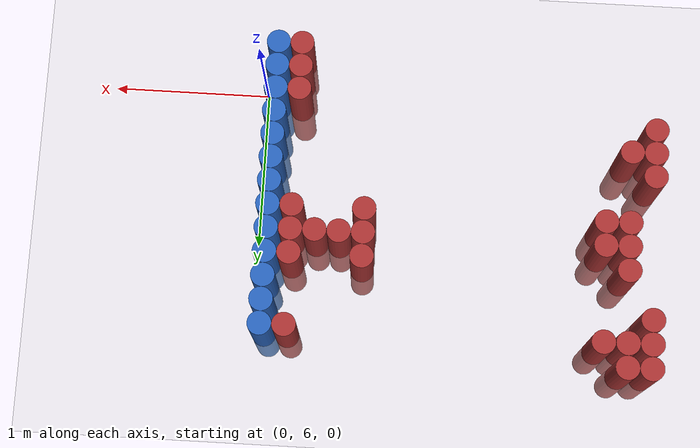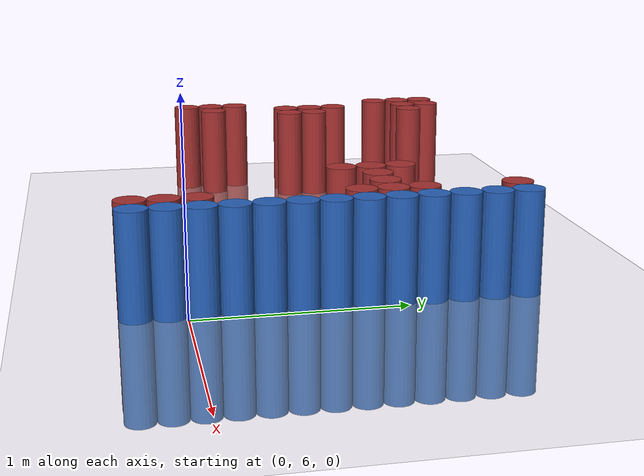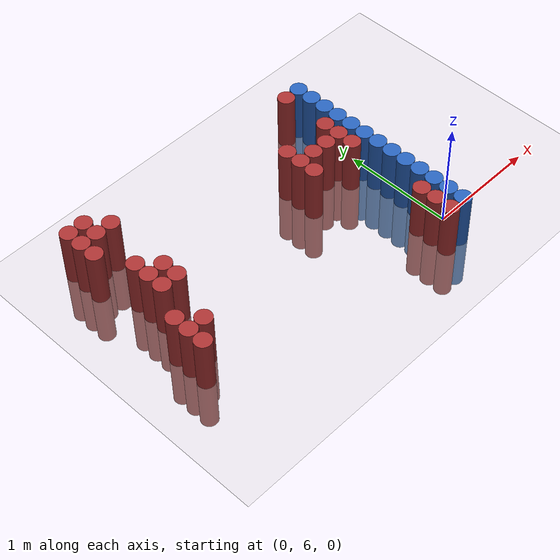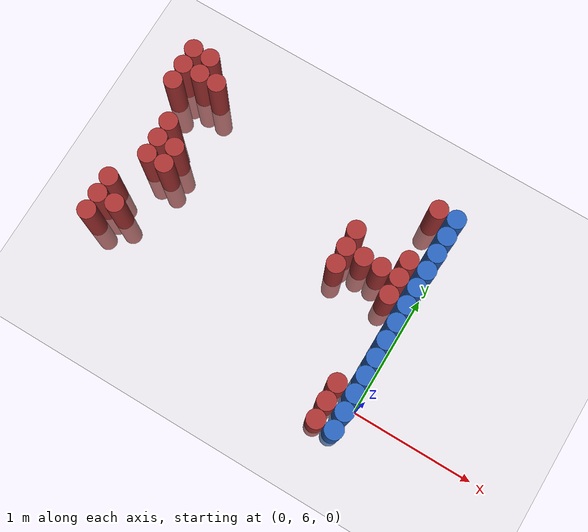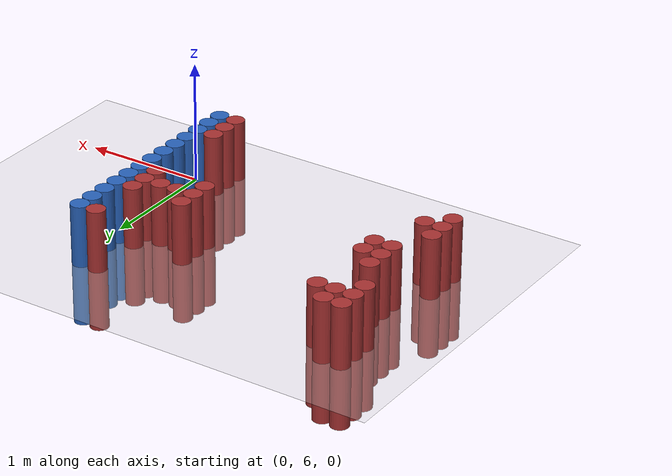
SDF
<sdf version="1.6">
 <world name="default">
  <model name="ground_plane">
   <static>1</static>
   <link name="link">
    <collision name="collision">
     <geometry><plane><normal>0 0 1</normal><size>100 100</size></plane></geometry>
     <surface><friction><ode><mu>100</mu><mu2>50</mu2></ode></friction></surface>
    </collision>
    <visual name="visual">
     <cast_shadows>0</cast_shadows>
     <geometry><plane><normal>0 0 1</normal><size>100 100</size></plane></geometry>
     <material>
      <script><uri>file://media/materials/scripts/gazebo.material</uri><name>Gazebo/Grey</name></script>
     </material>
    </visual>
   </link>
  </model>
  <model name="unit_cylinder_193">
   <static>1</static>
   <pose>-2.475000 6.225000 0.000000 0.000000 0.000000 0.000000</pose>
   <link name="link">
    <inertial>
     <mass>1</mass>
     <inertia><ixx>0.145833</ixx><ixy>0</ixy><ixz>0</ixz><iyy>0.145833</iyy><iyz>0</iyz><izz>0.125</izz></inertia>
    </inertial>
    <collision name="collision">
     <geometry><cylinder><radius>0.075000</radius><length>1</length></cylinder></geometry>
    </collision>
    <visual name="visual">
     <geometry><cylinder><radius>0.075000</radius><length>1</length></cylinder></geometry>
     <material>
      <ambient>0.648000 0.192000 0.192000 1</ambient>
      <diffuse>0.648000 0.192000 0.192000 1</diffuse>
     </material>
     <material>
      <script><name>Gazebo/Grey</name><uri>file://media/materials/scripts/gazebo.material</uri></script>
     </material>
    </visual>
    <sensor name="sensor_contact" type="contact"><contact><collision>collision</collision></contact></sensor>
   </link>
   <plugin filename="gz-sim-touchplugin-system" name="gz::sim::systems::TouchPlugin">
    <target>robot</target>
    <namespace>robot</namespace>
    <time>0.001</time>
    <enabled>true</enabled>
   </plugin>
  </model>
  <model name="unit_cylinder_194">
   <static>1</static>
   <pose>-2.475000 6.375000 0.000000 0.000000 0.000000 0.000000</pose>
   <link name="link">
    <inertial>
     <mass>1</mass>
     <inertia><ixx>0.145833</ixx><ixy>0</ixy><ixz>0</ixz><iyy>0.145833</iyy><iyz>0</iyz><izz>0.125</izz></inertia>
    </inertial>
    <collision name="collision">
     <geometry><cylinder><radius>0.075000</radius><length>1</length></cylinder></geometry>
    </collision>
    <visual name="visual">
     <geometry><cylinder><radius>0.075000</radius><length>1</length></cylinder></geometry>
     <material>
      <ambient>0.648000 0.192000 0.192000 1</ambient>
      <diffuse>0.648000 0.192000 0.192000 1</diffuse>
     </material>
     <material>
      <script><name>Gazebo/Grey</name><uri>file://media/materials/scripts/gazebo.material</uri></script>
     </material>
    </visual>
    <sensor name="sensor_contact" type="contact"><contact><collision>collision</collision></contact></sensor>
   </link>
   <plugin filename="gz-sim-touchplugin-system" name="gz::sim::systems::TouchPlugin">
    <target>robot</target>
    <namespace>robot</namespace>
    <time>0.001</time>
    <enabled>true</enabled>
   </plugin>
  </model>
  <model name="unit_cylinder_195">
   <static>1</static>
   <pose>-2.475000 6.525000 0.000000 0.000000 0.000000 0.000000</pose>
   <link name="link">
    <inertial>
     <mass>1</mass>
     <inertia><ixx>0.145833</ixx><ixy>0</ixy><ixz>0</ixz><iyy>0.145833</iyy><iyz>0</iyz><izz>0.125</izz></inertia>
    </inertial>
    <collision name="collision">
     <geometry><cylinder><radius>0.075000</radius><length>1</length></cylinder></geometry>
    </collision>
    <visual name="visual">
     <geometry><cylinder><radius>0.075000</radius><length>1</length></cylinder></geometry>
     <material>
      <ambient>0.648000 0.192000 0.192000 1</ambient>
      <diffuse>0.648000 0.192000 0.192000 1</diffuse>
     </material>
     <material>
      <script><name>Gazebo/Grey</name><uri>file://media/materials/scripts/gazebo.material</uri></script>
     </material>
    </visual>
    <sensor name="sensor_contact" type="contact"><contact><collision>collision</collision></contact></sensor>
   </link>
   <plugin filename="gz-sim-touchplugin-system" name="gz::sim::systems::TouchPlugin">
    <target>robot</target>
    <namespace>robot</namespace>
    <time>0.001</time>
    <enabled>true</enabled>
   </plugin>
  </model>
  <model name="unit_cylinder_196">
   <static>1</static>
   <pose>-2.475000 7.425000 0.000000 0.000000 0.000000 0.000000</pose>
   <link name="link">
    <inertial>
     <mass>1</mass>
     <inertia><ixx>0.145833</ixx><ixy>0</ixy><ixz>0</ixz><iyy>0.145833</iyy><iyz>0</iyz><izz>0.125</izz></inertia>
    </inertial>
    <collision name="collision">
     <geometry><cylinder><radius>0.075000</radius><length>1</length></cylinder></geometry>
    </collision>
    <visual name="visual">
     <geometry><cylinder><radius>0.075000</radius><length>1</length></cylinder></geometry>
     <material>
      <ambient>0.648000 0.192000 0.192000 1</ambient>
      <diffuse>0.648000 0.192000 0.192000 1</diffuse>
     </material>
     <material>
      <script><name>Gazebo/Grey</name><uri>file://media/materials/scripts/gazebo.material</uri></script>
     </material>
    </visual>
    <sensor name="sensor_contact" type="contact"><contact><collision>collision</collision></contact></sensor>
   </link>
   <plugin filename="gz-sim-touchplugin-system" name="gz::sim::systems::TouchPlugin">
    <target>robot</target>
    <namespace>robot</namespace>
    <time>0.001</time>
    <enabled>true</enabled>
   </plugin>
  </model>
  <model name="unit_cylinder_197">
   <static>1</static>
   <pose>-2.475000 7.575000 0.000000 0.000000 0.000000 0.000000</pose>
   <link name="link">
    <inertial>
     <mass>1</mass>
     <inertia><ixx>0.145833</ixx><ixy>0</ixy><ixz>0</ixz><iyy>0.145833</iyy><iyz>0</iyz><izz>0.125</izz></inertia>
    </inertial>
    <collision name="collision">
     <geometry><cylinder><radius>0.075000</radius><length>1</length></cylinder></geometry>
    </collision>
    <visual name="visual">
     <geometry><cylinder><radius>0.075000</radius><length>1</length></cylinder></geometry>
     <material>
      <ambient>0.648000 0.192000 0.192000 1</ambient>
      <diffuse>0.648000 0.192000 0.192000 1</diffuse>
     </material>
     <material>
      <script><name>Gazebo/Grey</name><uri>file://media/materials/scripts/gazebo.material</uri></script>
     </material>
    </visual>
    <sensor name="sensor_contact" type="contact"><contact><collision>collision</collision></contact></sensor>
   </link>
   <plugin filename="gz-sim-touchplugin-system" name="gz::sim::systems::TouchPlugin">
    <target>robot</target>
    <namespace>robot</namespace>
    <time>0.001</time>
    <enabled>true</enabled>
   </plugin>
  </model>
  <model name="unit_cylinder_198">
   <static>1</static>
   <pose>-2.475000 7.725000 0.000000 0.000000 0.000000 0.000000</pose>
   <link name="link">
    <inertial>
     <mass>1</mass>
     <inertia><ixx>0.145833</ixx><ixy>0</ixy><ixz>0</ixz><iyy>0.145833</iyy><iyz>0</iyz><izz>0.125</izz></inertia>
    </inertial>
    <collision name="collision">
     <geometry><cylinder><radius>0.075000</radius><length>1</length></cylinder></geometry>
    </collision>
    <visual name="visual">
     <geometry><cylinder><radius>0.075000</radius><length>1</length></cylinder></geometry>
     <material>
      <ambient>0.648000 0.192000 0.192000 1</ambient>
      <diffuse>0.648000 0.192000 0.192000 1</diffuse>
     </material>
     <material>
      <script><name>Gazebo/Grey</name><uri>file://media/materials/scripts/gazebo.material</uri></script>
     </material>
    </visual>
    <sensor name="sensor_contact" type="contact"><contact><collision>collision</collision></contact></sensor>
   </link>
   <plugin filename="gz-sim-touchplugin-system" name="gz::sim::systems::TouchPlugin">
    <target>robot</target>
    <namespace>robot</namespace>
    <time>0.001</time>
    <enabled>true</enabled>
   </plugin>
  </model>
  <model name="unit_cylinder_200">
   <static>1</static>
   <pose>-2.325000 6.375000 0.000000 0.000000 0.000000 0.000000</pose>
   <link name="link">
    <inertial>
     <mass>1</mass>
     <inertia><ixx>0.145833</ixx><ixy>0</ixy><ixz>0</ixz><iyy>0.145833</iyy><iyz>0</iyz><izz>0.125</izz></inertia>
    </inertial>
    <collision name="collision">
     <geometry><cylinder><radius>0.075000</radius><length>1</length></cylinder></geometry>
    </collision>
    <visual name="visual">
     <geometry><cylinder><radius>0.075000</radius><length>1</length></cylinder></geometry>
     <material>
      <ambient>0.648000 0.192000 0.192000 1</ambient>
      <diffuse>0.648000 0.192000 0.192000 1</diffuse>
     </material>
     <material>
      <script><name>Gazebo/Grey</name><uri>file://media/materials/scripts/gazebo.material</uri></script>
     </material>
    </visual>
    <sensor name="sensor_contact" type="contact"><contact><collision>collision</collision></contact></sensor>
   </link>
   <plugin filename="gz-sim-touchplugin-system" name="gz::sim::systems::TouchPlugin">
    <target>robot</target>
    <namespace>robot</namespace>
    <time>0.001</time>
    <enabled>true</enabled>
   </plugin>
  </model>
  <model name="unit_cylinder_201">
   <static>1</static>
   <pose>-2.325000 6.825000 0.000000 0.000000 0.000000 0.000000</pose>
   <link name="link">
    <inertial>
     <mass>1</mass>
     <inertia><ixx>0.145833</ixx><ixy>0</ixy><ixz>0</ixz><iyy>0.145833</iyy><iyz>0</iyz><izz>0.125</izz></inertia>
    </inertial>
    <collision name="collision">
     <geometry><cylinder><radius>0.075000</radius><length>1</length></cylinder></geometry>
    </collision>
    <visual name="visual">
     <geometry><cylinder><radius>0.075000</radius><length>1</length></cylinder></geometry>
     <material>
      <ambient>0.648000 0.192000 0.192000 1</ambient>
      <diffuse>0.648000 0.192000 0.192000 1</diffuse>
     </material>
     <material>
      <script><name>Gazebo/Grey</name><uri>file://media/materials/scripts/gazebo.material</uri></script>
     </material>
    </visual>
    <sensor name="sensor_contact" type="contact"><contact><collision>collision</collision></contact></sensor>
   </link>
   <plugin filename="gz-sim-touchplugin-system" name="gz::sim::systems::TouchPlugin">
    <target>robot</target>
    <namespace>robot</namespace>
    <time>0.001</time>
    <enabled>true</enabled>
   </plugin>
  </model>
  <model name="unit_cylinder_202">
   <static>1</static>
   <pose>-2.325000 6.975000 0.000000 0.000000 0.000000 0.000000</pose>
   <link name="link">
    <inertial>
     <mass>1</mass>
     <inertia><ixx>0.145833</ixx><ixy>0</ixy><ixz>0</ixz><iyy>0.145833</iyy><iyz>0</iyz><izz>0.125</izz></inertia>
    </inertial>
    <collision name="collision">
     <geometry><cylinder><radius>0.075000</radius><length>1</length></cylinder></geometry>
    </collision>
    <visual name="visual">
     <geometry><cylinder><radius>0.075000</radius><length>1</length></cylinder></geometry>
     <material>
      <ambient>0.648000 0.192000 0.192000 1</ambient>
      <diffuse>0.648000 0.192000 0.192000 1</diffuse>
     </material>
     <material>
      <script><name>Gazebo/Grey</name><uri>file://media/materials/scripts/gazebo.material</uri></script>
     </material>
    </visual>
    <sensor name="sensor_contact" type="contact"><contact><collision>collision</collision></contact></sensor>
   </link>
   <plugin filename="gz-sim-touchplugin-system" name="gz::sim::systems::TouchPlugin">
    <target>robot</target>
    <namespace>robot</namespace>
    <time>0.001</time>
    <enabled>true</enabled>
   </plugin>
  </model>
  <model name="unit_cylinder_203">
   <static>1</static>
   <pose>-2.325000 7.125000 0.000000 0.000000 0.000000 0.000000</pose>
   <link name="link">
    <inertial>
     <mass>1</mass>
     <inertia><ixx>0.145833</ixx><ixy>0</ixy><ixz>0</ixz><iyy>0.145833</iyy><iyz>0</iyz><izz>0.125</izz></inertia>
    </inertial>
    <collision name="collision">
     <geometry><cylinder><radius>0.075000</radius><length>1</length></cylinder></geometry>
    </collision>
    <visual name="visual">
     <geometry><cylinder><radius>0.075000</radius><length>1</length></cylinder></geometry>
     <material>
      <ambient>0.648000 0.192000 0.192000 1</ambient>
      <diffuse>0.648000 0.192000 0.192000 1</diffuse>
     </material>
     <material>
      <script><name>Gazebo/Grey</name><uri>file://media/materials/scripts/gazebo.material</uri></script>
     </material>
    </visual>
    <sensor name="sensor_contact" type="contact"><contact><collision>collision</collision></contact></sensor>
   </link>
   <plugin filename="gz-sim-touchplugin-system" name="gz::sim::systems::TouchPlugin">
    <target>robot</target>
    <namespace>robot</namespace>
    <time>0.001</time>
    <enabled>true</enabled>
   </plugin>
  </model>
  <model name="unit_cylinder_204">
   <static>1</static>
   <pose>-2.325000 7.575000 0.000000 0.000000 0.000000 0.000000</pose>
   <link name="link">
    <inertial>
     <mass>1</mass>
     <inertia><ixx>0.145833</ixx><ixy>0</ixy><ixz>0</ixz><iyy>0.145833</iyy><iyz>0</iyz><izz>0.125</izz></inertia>
    </inertial>
    <collision name="collision">
     <geometry><cylinder><radius>0.075000</radius><length>1</length></cylinder></geometry>
    </collision>
    <visual name="visual">
     <geometry><cylinder><radius>0.075000</radius><length>1</length></cylinder></geometry>
     <material>
      <ambient>0.648000 0.192000 0.192000 1</ambient>
      <diffuse>0.648000 0.192000 0.192000 1</diffuse>
     </material>
     <material>
      <script><name>Gazebo/Grey</name><uri>file://media/materials/scripts/gazebo.material</uri></script>
     </material>
    </visual>
    <sensor name="sensor_contact" type="contact"><contact><collision>collision</collision></contact></sensor>
   </link>
   <plugin filename="gz-sim-touchplugin-system" name="gz::sim::systems::TouchPlugin">
    <target>robot</target>
    <namespace>robot</namespace>
    <time>0.001</time>
    <enabled>true</enabled>
   </plugin>
  </model>
  <model name="unit_cylinder_205">
   <static>1</static>
   <pose>-2.325000 7.725000 0.000000 0.000000 0.000000 0.000000</pose>
   <link name="link">
    <inertial>
     <mass>1</mass>
     <inertia><ixx>0.145833</ixx><ixy>0</ixy><ixz>0</ixz><iyy>0.145833</iyy><iyz>0</iyz><izz>0.125</izz></inertia>
    </inertial>
    <collision name="collision">
     <geometry><cylinder><radius>0.075000</radius><length>1</length></cylinder></geometry>
    </collision>
    <visual name="visual">
     <geometry><cylinder><radius>0.075000</radius><length>1</length></cylinder></geometry>
     <material>
      <ambient>0.648000 0.192000 0.192000 1</ambient>
      <diffuse>0.648000 0.192000 0.192000 1</diffuse>
     </material>
     <material>
      <script><name>Gazebo/Grey</name><uri>file://media/materials/scripts/gazebo.material</uri></script>
     </material>
    </visual>
    <sensor name="sensor_contact" type="contact"><contact><collision>collision</collision></contact></sensor>
   </link>
   <plugin filename="gz-sim-touchplugin-system" name="gz::sim::systems::TouchPlugin">
    <target>robot</target>
    <namespace>robot</namespace>
    <time>0.001</time>
    <enabled>true</enabled>
   </plugin>
  </model>
  <model name="unit_cylinder_210">
   <static>1</static>
   <pose>-2.175000 6.825000 0.000000 0.000000 0.000000 0.000000</pose>
   <link name="link">
    <inertial>
     <mass>1</mass>
     <inertia><ixx>0.145833</ixx><ixy>0</ixy><ixz>0</ixz><iyy>0.145833</iyy><iyz>0</iyz><izz>0.125</izz></inertia>
    </inertial>
    <collision name="collision">
     <geometry><cylinder><radius>0.075000</radius><length>1</length></cylinder></geometry>
    </collision>
    <visual name="visual">
     <geometry><cylinder><radius>0.075000</radius><length>1</length></cylinder></geometry>
     <material>
      <ambient>0.648000 0.192000 0.192000 1</ambient>
      <diffuse>0.648000 0.192000 0.192000 1</diffuse>
     </material>
     <material>
      <script><name>Gazebo/Grey</name><uri>file://media/materials/scripts/gazebo.material</uri></script>
     </material>
    </visual>
    <sensor name="sensor_contact" type="contact"><contact><collision>collision</collision></contact></sensor>
   </link>
   <plugin filename="gz-sim-touchplugin-system" name="gz::sim::systems::TouchPlugin">
    <target>robot</target>
    <namespace>robot</namespace>
    <time>0.001</time>
    <enabled>true</enabled>
   </plugin>
  </model>
  <model name="unit_cylinder_211">
   <static>1</static>
   <pose>-2.175000 6.975000 0.000000 0.000000 0.000000 0.000000</pose>
   <link name="link">
    <inertial>
     <mass>1</mass>
     <inertia><ixx>0.145833</ixx><ixy>0</ixy><ixz>0</ixz><iyy>0.145833</iyy><iyz>0</iyz><izz>0.125</izz></inertia>
    </inertial>
    <collision name="collision">
     <geometry><cylinder><radius>0.075000</radius><length>1</length></cylinder></geometry>
    </collision>
    <visual name="visual">
     <geometry><cylinder><radius>0.075000</radius><length>1</length></cylinder></geometry>
     <material>
      <ambient>0.648000 0.192000 0.192000 1</ambient>
      <diffuse>0.648000 0.192000 0.192000 1</diffuse>
     </material>
     <material>
      <script><name>Gazebo/Grey</name><uri>file://media/materials/scripts/gazebo.material</uri></script>
     </material>
    </visual>
    <sensor name="sensor_contact" type="contact"><contact><collision>collision</collision></contact></sensor>
   </link>
   <plugin filename="gz-sim-touchplugin-system" name="gz::sim::systems::TouchPlugin">
    <target>robot</target>
    <namespace>robot</namespace>
    <time>0.001</time>
    <enabled>true</enabled>
   </plugin>
  </model>
  <model name="unit_cylinder_212">
   <static>1</static>
   <pose>-2.175000 7.575000 0.000000 0.000000 0.000000 0.000000</pose>
   <link name="link">
    <inertial>
     <mass>1</mass>
     <inertia><ixx>0.145833</ixx><ixy>0</ixy><ixz>0</ixz><iyy>0.145833</iyy><iyz>0</iyz><izz>0.125</izz></inertia>
    </inertial>
    <collision name="collision">
     <geometry><cylinder><radius>0.075000</radius><length>1</length></cylinder></geometry>
    </collision>
    <visual name="visual">
     <geometry><cylinder><radius>0.075000</radius><length>1</length></cylinder></geometry>
     <material>
      <ambient>0.648000 0.192000 0.192000 1</ambient>
      <diffuse>0.648000 0.192000 0.192000 1</diffuse>
     </material>
     <material>
      <script><name>Gazebo/Grey</name><uri>file://media/materials/scripts/gazebo.material</uri></script>
     </material>
    </visual>
    <sensor name="sensor_contact" type="contact"><contact><collision>collision</collision></contact></sensor>
   </link>
   <plugin filename="gz-sim-touchplugin-system" name="gz::sim::systems::TouchPlugin">
    <target>robot</target>
    <namespace>robot</namespace>
    <time>0.001</time>
    <enabled>true</enabled>
   </plugin>
  </model>
  <model name="unit_cylinder_230">
   <static>1</static>
   <pose>-0.675000 6.825000 0.000000 0.000000 0.000000 0.000000</pose>
   <link name="link">
    <inertial>
     <mass>1</mass>
     <inertia><ixx>0.145833</ixx><ixy>0</ixy><ixz>0</ixz><iyy>0.145833</iyy><iyz>0</iyz><izz>0.125</izz></inertia>
    </inertial>
    <collision name="collision">
     <geometry><cylinder><radius>0.075000</radius><length>1</length></cylinder></geometry>
    </collision>
    <visual name="visual">
     <geometry><cylinder><radius>0.075000</radius><length>1</length></cylinder></geometry>
     <material>
      <ambient>0.648000 0.192000 0.192000 1</ambient>
      <diffuse>0.648000 0.192000 0.192000 1</diffuse>
     </material>
     <material>
      <script><name>Gazebo/Grey</name><uri>file://media/materials/scripts/gazebo.material</uri></script>
     </material>
    </visual>
    <sensor name="sensor_contact" type="contact"><contact><collision>collision</collision></contact></sensor>
   </link>
   <plugin filename="gz-sim-touchplugin-system" name="gz::sim::systems::TouchPlugin">
    <target>robot</target>
    <namespace>robot</namespace>
    <time>0.001</time>
    <enabled>true</enabled>
   </plugin>
  </model>
  <model name="unit_cylinder_231">
   <static>1</static>
   <pose>-0.675000 6.975000 0.000000 0.000000 0.000000 0.000000</pose>
   <link name="link">
    <inertial>
     <mass>1</mass>
     <inertia><ixx>0.145833</ixx><ixy>0</ixy><ixz>0</ixz><iyy>0.145833</iyy><iyz>0</iyz><izz>0.125</izz></inertia>
    </inertial>
    <collision name="collision">
     <geometry><cylinder><radius>0.075000</radius><length>1</length></cylinder></geometry>
    </collision>
    <visual name="visual">
     <geometry><cylinder><radius>0.075000</radius><length>1</length></cylinder></geometry>
     <material>
      <ambient>0.648000 0.192000 0.192000 1</ambient>
      <diffuse>0.648000 0.192000 0.192000 1</diffuse>
     </material>
     <material>
      <script><name>Gazebo/Grey</name><uri>file://media/materials/scripts/gazebo.material</uri></script>
     </material>
    </visual>
    <sensor name="sensor_contact" type="contact"><contact><collision>collision</collision></contact></sensor>
   </link>
   <plugin filename="gz-sim-touchplugin-system" name="gz::sim::systems::TouchPlugin">
    <target>robot</target>
    <namespace>robot</namespace>
    <time>0.001</time>
    <enabled>true</enabled>
   </plugin>
  </model>
  <model name="unit_cylinder_232">
   <static>1</static>
   <pose>-0.675000 7.125000 0.000000 0.000000 0.000000 0.000000</pose>
   <link name="link">
    <inertial>
     <mass>1</mass>
     <inertia><ixx>0.145833</ixx><ixy>0</ixy><ixz>0</ixz><iyy>0.145833</iyy><iyz>0</iyz><izz>0.125</izz></inertia>
    </inertial>
    <collision name="collision">
     <geometry><cylinder><radius>0.075000</radius><length>1</length></cylinder></geometry>
    </collision>
    <visual name="visual">
     <geometry><cylinder><radius>0.075000</radius><length>1</length></cylinder></geometry>
     <material>
      <ambient>0.648000 0.192000 0.192000 1</ambient>
      <diffuse>0.648000 0.192000 0.192000 1</diffuse>
     </material>
     <material>
      <script><name>Gazebo/Grey</name><uri>file://media/materials/scripts/gazebo.material</uri></script>
     </material>
    </visual>
    <sensor name="sensor_contact" type="contact"><contact><collision>collision</collision></contact></sensor>
   </link>
   <plugin filename="gz-sim-touchplugin-system" name="gz::sim::systems::TouchPlugin">
    <target>robot</target>
    <namespace>robot</namespace>
    <time>0.001</time>
    <enabled>true</enabled>
   </plugin>
  </model>
  <model name="unit_cylinder_233">
   <static>1</static>
   <pose>-0.525000 6.975000 0.000000 0.000000 0.000000 0.000000</pose>
   <link name="link">
    <inertial>
     <mass>1</mass>
     <inertia><ixx>0.145833</ixx><ixy>0</ixy><ixz>0</ixz><iyy>0.145833</iyy><iyz>0</iyz><izz>0.125</izz></inertia>
    </inertial>
    <collision name="collision">
     <geometry><cylinder><radius>0.075000</radius><length>1</length></cylinder></geometry>
    </collision>
    <visual name="visual">
     <geometry><cylinder><radius>0.075000</radius><length>1</length></cylinder></geometry>
     <material>
      <ambient>0.648000 0.192000 0.192000 1</ambient>
      <diffuse>0.648000 0.192000 0.192000 1</diffuse>
     </material>
     <material>
      <script><name>Gazebo/Grey</name><uri>file://media/materials/scripts/gazebo.material</uri></script>
     </material>
    </visual>
    <sensor name="sensor_contact" type="contact"><contact><collision>collision</collision></contact></sensor>
   </link>
   <plugin filename="gz-sim-touchplugin-system" name="gz::sim::systems::TouchPlugin">
    <target>robot</target>
    <namespace>robot</namespace>
    <time>0.001</time>
    <enabled>true</enabled>
   </plugin>
  </model>
  <model name="unit_cylinder_237">
   <static>1</static>
   <pose>-0.375000 6.975000 0.000000 0.000000 0.000000 0.000000</pose>
   <link name="link">
    <inertial>
     <mass>1</mass>
     <inertia><ixx>0.145833</ixx><ixy>0</ixy><ixz>0</ixz><iyy>0.145833</iyy><iyz>0</iyz><izz>0.125</izz></inertia>
    </inertial>
    <collision name="collision">
     <geometry><cylinder><radius>0.075000</radius><length>1</length></cylinder></geometry>
    </collision>
    <visual name="visual">
     <geometry><cylinder><radius>0.075000</radius><length>1</length></cylinder></geometry>
     <material>
      <ambient>0.648000 0.192000 0.192000 1</ambient>
      <diffuse>0.648000 0.192000 0.192000 1</diffuse>
     </material>
     <material>
      <script><name>Gazebo/Grey</name><uri>file://media/materials/scripts/gazebo.material</uri></script>
     </material>
    </visual>
    <sensor name="sensor_contact" type="contact"><contact><collision>collision</collision></contact></sensor>
   </link>
   <plugin filename="gz-sim-touchplugin-system" name="gz::sim::systems::TouchPlugin">
    <target>robot</target>
    <namespace>robot</namespace>
    <time>0.001</time>
    <enabled>true</enabled>
   </plugin>
  </model>
  <model name="unit_cylinder_244">
   <static>1</static>
   <pose>-0.225000 5.775000 0.000000 0.000000 0.000000 0.000000</pose>
   <link name="link">
    <inertial>
     <mass>1</mass>
     <inertia><ixx>0.145833</ixx><ixy>0</ixy><ixz>0</ixz><iyy>0.145833</iyy><iyz>0</iyz><izz>0.125</izz></inertia>
    </inertial>
    <collision name="collision">
     <geometry><cylinder><radius>0.075000</radius><length>1</length></cylinder></geometry>
    </collision>
    <visual name="visual">
     <geometry><cylinder><radius>0.075000</radius><length>1</length></cylinder></geometry>
     <material>
      <ambient>0.648000 0.192000 0.192000 1</ambient>
      <diffuse>0.648000 0.192000 0.192000 1</diffuse>
     </material>
     <material>
      <script><name>Gazebo/Grey</name><uri>file://media/materials/scripts/gazebo.material</uri></script>
     </material>
    </visual>
    <sensor name="sensor_contact" type="contact"><contact><collision>collision</collision></contact></sensor>
   </link>
   <plugin filename="gz-sim-touchplugin-system" name="gz::sim::systems::TouchPlugin">
    <target>robot</target>
    <namespace>robot</namespace>
    <time>0.001</time>
    <enabled>true</enabled>
   </plugin>
  </model>
  <model name="unit_cylinder_245">
   <static>1</static>
   <pose>-0.225000 5.925000 0.000000 0.000000 0.000000 0.000000</pose>
   <link name="link">
    <inertial>
     <mass>1</mass>
     <inertia><ixx>0.145833</ixx><ixy>0</ixy><ixz>0</ixz><iyy>0.145833</iyy><iyz>0</iyz><izz>0.125</izz></inertia>
    </inertial>
    <collision name="collision">
     <geometry><cylinder><radius>0.075000</radius><length>1</length></cylinder></geometry>
    </collision>
    <visual name="visual">
     <geometry><cylinder><radius>0.075000</radius><length>1</length></cylinder></geometry>
     <material>
      <ambient>0.648000 0.192000 0.192000 1</ambient>
      <diffuse>0.648000 0.192000 0.192000 1</diffuse>
     </material>
     <material>
      <script><name>Gazebo/Grey</name><uri>file://media/materials/scripts/gazebo.material</uri></script>
     </material>
    </visual>
    <sensor name="sensor_contact" type="contact"><contact><collision>collision</collision></contact></sensor>
   </link>
   <plugin filename="gz-sim-touchplugin-system" name="gz::sim::systems::TouchPlugin">
    <target>robot</target>
    <namespace>robot</namespace>
    <time>0.001</time>
    <enabled>true</enabled>
   </plugin>
  </model>
  <model name="unit_cylinder_246">
   <static>1</static>
   <pose>-0.225000 6.075000 0.000000 0.000000 0.000000 0.000000</pose>
   <link name="link">
    <inertial>
     <mass>1</mass>
     <inertia><ixx>0.145833</ixx><ixy>0</ixy><ixz>0</ixz><iyy>0.145833</iyy><iyz>0</iyz><izz>0.125</izz></inertia>
    </inertial>
    <collision name="collision">
     <geometry><cylinder><radius>0.075000</radius><length>1</length></cylinder></geometry>
    </collision>
    <visual name="visual">
     <geometry><cylinder><radius>0.075000</radius><length>1</length></cylinder></geometry>
     <material>
      <ambient>0.648000 0.192000 0.192000 1</ambient>
      <diffuse>0.648000 0.192000 0.192000 1</diffuse>
     </material>
     <material>
      <script><name>Gazebo/Grey</name><uri>file://media/materials/scripts/gazebo.material</uri></script>
     </material>
    </visual>
    <sensor name="sensor_contact" type="contact"><contact><collision>collision</collision></contact></sensor>
   </link>
   <plugin filename="gz-sim-touchplugin-system" name="gz::sim::systems::TouchPlugin">
    <target>robot</target>
    <namespace>robot</namespace>
    <time>0.001</time>
    <enabled>true</enabled>
   </plugin>
  </model>
  <model name="unit_cylinder_247">
   <static>1</static>
   <pose>-0.225000 6.825000 0.000000 0.000000 0.000000 0.000000</pose>
   <link name="link">
    <inertial>
     <mass>1</mass>
     <inertia><ixx>0.145833</ixx><ixy>0</ixy><ixz>0</ixz><iyy>0.145833</iyy><iyz>0</iyz><izz>0.125</izz></inertia>
    </inertial>
    <collision name="collision">
     <geometry><cylinder><radius>0.075000</radius><length>1</length></cylinder></geometry>
    </collision>
    <visual name="visual">
     <geometry><cylinder><radius>0.075000</radius><length>1</length></cylinder></geometry>
     <material>
      <ambient>0.648000 0.192000 0.192000 1</ambient>
      <diffuse>0.648000 0.192000 0.192000 1</diffuse>
     </material>
     <material>
      <script><name>Gazebo/Grey</name><uri>file://media/materials/scripts/gazebo.material</uri></script>
     </material>
    </visual>
    <sensor name="sensor_contact" type="contact"><contact><collision>collision</collision></contact></sensor>
   </link>
   <plugin filename="gz-sim-touchplugin-system" name="gz::sim::systems::TouchPlugin">
    <target>robot</target>
    <namespace>robot</namespace>
    <time>0.001</time>
    <enabled>true</enabled>
   </plugin>
  </model>
  <model name="unit_cylinder_248">
   <static>1</static>
   <pose>-0.225000 6.975000 0.000000 0.000000 0.000000 0.000000</pose>
   <link name="link">
    <inertial>
     <mass>1</mass>
     <inertia><ixx>0.145833</ixx><ixy>0</ixy><ixz>0</ixz><iyy>0.145833</iyy><iyz>0</iyz><izz>0.125</izz></inertia>
    </inertial>
    <collision name="collision">
     <geometry><cylinder><radius>0.075000</radius><length>1</length></cylinder></geometry>
    </collision>
    <visual name="visual">
     <geometry><cylinder><radius>0.075000</radius><length>1</length></cylinder></geometry>
     <material>
      <ambient>0.648000 0.192000 0.192000 1</ambient>
      <diffuse>0.648000 0.192000 0.192000 1</diffuse>
     </material>
     <material>
      <script><name>Gazebo/Grey</name><uri>file://media/materials/scripts/gazebo.material</uri></script>
     </material>
    </visual>
    <sensor name="sensor_contact" type="contact"><contact><collision>collision</collision></contact></sensor>
   </link>
   <plugin filename="gz-sim-touchplugin-system" name="gz::sim::systems::TouchPlugin">
    <target>robot</target>
    <namespace>robot</namespace>
    <time>0.001</time>
    <enabled>true</enabled>
   </plugin>
  </model>
  <model name="unit_cylinder_249">
   <static>1</static>
   <pose>-0.225000 7.125000 0.000000 0.000000 0.000000 0.000000</pose>
   <link name="link">
    <inertial>
     <mass>1</mass>
     <inertia><ixx>0.145833</ixx><ixy>0</ixy><ixz>0</ixz><iyy>0.145833</iyy><iyz>0</iyz><izz>0.125</izz></inertia>
    </inertial>
    <collision name="collision">
     <geometry><cylinder><radius>0.075000</radius><length>1</length></cylinder></geometry>
    </collision>
    <visual name="visual">
     <geometry><cylinder><radius>0.075000</radius><length>1</length></cylinder></geometry>
     <material>
      <ambient>0.648000 0.192000 0.192000 1</ambient>
      <diffuse>0.648000 0.192000 0.192000 1</diffuse>
     </material>
     <material>
      <script><name>Gazebo/Grey</name><uri>file://media/materials/scripts/gazebo.material</uri></script>
     </material>
    </visual>
    <sensor name="sensor_contact" type="contact"><contact><collision>collision</collision></contact></sensor>
   </link>
   <plugin filename="gz-sim-touchplugin-system" name="gz::sim::systems::TouchPlugin">
    <target>robot</target>
    <namespace>robot</namespace>
    <time>0.001</time>
    <enabled>true</enabled>
   </plugin>
  </model>
  <model name="unit_cylinder_250">
   <static>1</static>
   <pose>-0.225000 7.575000 0.000000 0.000000 0.000000 0.000000</pose>
   <link name="link">
    <inertial>
     <mass>1</mass>
     <inertia><ixx>0.145833</ixx><ixy>0</ixy><ixz>0</ixz><iyy>0.145833</iyy><iyz>0</iyz><izz>0.125</izz></inertia>
    </inertial>
    <collision name="collision">
     <geometry><cylinder><radius>0.075000</radius><length>1</length></cylinder></geometry>
    </collision>
    <visual name="visual">
     <geometry><cylinder><radius>0.075000</radius><length>1</length></cylinder></geometry>
     <material>
      <ambient>0.648000 0.192000 0.192000 1</ambient>
      <diffuse>0.648000 0.192000 0.192000 1</diffuse>
     </material>
     <material>
      <script><name>Gazebo/Grey</name><uri>file://media/materials/scripts/gazebo.material</uri></script>
     </material>
    </visual>
    <sensor name="sensor_contact" type="contact"><contact><collision>collision</collision></contact></sensor>
   </link>
   <plugin filename="gz-sim-touchplugin-system" name="gz::sim::systems::TouchPlugin">
    <target>robot</target>
    <namespace>robot</namespace>
    <time>0.001</time>
    <enabled>true</enabled>
   </plugin>
  </model>
  <model name="unit_cylinder_258">
   <static>1</static>
   <pose>-0.075000 5.775000 0.000000 0.000000 0.000000 0.000000</pose>
   <link name="link">
    <inertial>
     <mass>1</mass>
     <inertia><ixx>0.145833</ixx><ixy>0</ixy><ixz>0</ixz><iyy>0.145833</iyy><iyz>0</iyz><izz>0.125</izz></inertia>
    </inertial>
    <collision name="collision">
     <geometry><cylinder><radius>0.075000</radius><length>1</length></cylinder></geometry>
    </collision>
    <visual name="visual">
     <geometry><cylinder><radius>0.075000</radius><length>1</length></cylinder></geometry>
     <material>
      <ambient>0.152000 0.379000 0.720000 1</ambient>
      <diffuse>0.152000 0.379000 0.720000 1</diffuse>
     </material>
     <material>
      <script><name>Gazebo/Grey</name><uri>file://media/materials/scripts/gazebo.material</uri></script>
     </material>
    </visual>
    <sensor name="sensor_contact" type="contact"><contact><collision>collision</collision></contact></sensor>
   </link>
   <plugin filename="gz-sim-touchplugin-system" name="gz::sim::systems::TouchPlugin">
    <target>robot</target>
    <namespace>robot</namespace>
    <time>0.001</time>
    <enabled>true</enabled>
   </plugin>
  </model>
  <model name="unit_cylinder_259">
   <static>1</static>
   <pose>-0.075000 5.925000 0.000000 0.000000 0.000000 0.000000</pose>
   <link name="link">
    <inertial>
     <mass>1</mass>
     <inertia><ixx>0.145833</ixx><ixy>0</ixy><ixz>0</ixz><iyy>0.145833</iyy><iyz>0</iyz><izz>0.125</izz></inertia>
    </inertial>
    <collision name="collision">
     <geometry><cylinder><radius>0.075000</radius><length>1</length></cylinder></geometry>
    </collision>
    <visual name="visual">
     <geometry><cylinder><radius>0.075000</radius><length>1</length></cylinder></geometry>
     <material>
      <ambient>0.152000 0.379000 0.720000 1</ambient>
      <diffuse>0.152000 0.379000 0.720000 1</diffuse>
     </material>
     <material>
      <script><name>Gazebo/Grey</name><uri>file://media/materials/scripts/gazebo.material</uri></script>
     </material>
    </visual>
    <sensor name="sensor_contact" type="contact"><contact><collision>collision</collision></contact></sensor>
   </link>
   <plugin filename="gz-sim-touchplugin-system" name="gz::sim::systems::TouchPlugin">
    <target>robot</target>
    <namespace>robot</namespace>
    <time>0.001</time>
    <enabled>true</enabled>
   </plugin>
  </model>
  <model name="unit_cylinder_260">
   <static>1</static>
   <pose>-0.075000 6.075000 0.000000 0.000000 0.000000 0.000000</pose>
   <link name="link">
    <inertial>
     <mass>1</mass>
     <inertia><ixx>0.145833</ixx><ixy>0</ixy><ixz>0</ixz><iyy>0.145833</iyy><iyz>0</iyz><izz>0.125</izz></inertia>
    </inertial>
    <collision name="collision">
     <geometry><cylinder><radius>0.075000</radius><length>1</length></cylinder></geometry>
    </collision>
    <visual name="visual">
     <geometry><cylinder><radius>0.075000</radius><length>1</length></cylinder></geometry>
     <material>
      <ambient>0.152000 0.379000 0.720000 1</ambient>
      <diffuse>0.152000 0.379000 0.720000 1</diffuse>
     </material>
     <material>
      <script><name>Gazebo/Grey</name><uri>file://media/materials/scripts/gazebo.material</uri></script>
     </material>
    </visual>
    <sensor name="sensor_contact" type="contact"><contact><collision>collision</collision></contact></sensor>
   </link>
   <plugin filename="gz-sim-touchplugin-system" name="gz::sim::systems::TouchPlugin">
    <target>robot</target>
    <namespace>robot</namespace>
    <time>0.001</time>
    <enabled>true</enabled>
   </plugin>
  </model>
  <model name="unit_cylinder_261">
   <static>1</static>
   <pose>-0.075000 6.225000 0.000000 0.000000 0.000000 0.000000</pose>
   <link name="link">
    <inertial>
     <mass>1</mass>
     <inertia><ixx>0.145833</ixx><ixy>0</ixy><ixz>0</ixz><iyy>0.145833</iyy><iyz>0</iyz><izz>0.125</izz></inertia>
    </inertial>
    <collision name="collision">
     <geometry><cylinder><radius>0.075000</radius><length>1</length></cylinder></geometry>
    </collision>
    <visual name="visual">
     <geometry><cylinder><radius>0.075000</radius><length>1</length></cylinder></geometry>
     <material>
      <ambient>0.152000 0.379000 0.720000 1</ambient>
      <diffuse>0.152000 0.379000 0.720000 1</diffuse>
     </material>
     <material>
      <script><name>Gazebo/Grey</name><uri>file://media/materials/scripts/gazebo.material</uri></script>
     </material>
    </visual>
    <sensor name="sensor_contact" type="contact"><contact><collision>collision</collision></contact></sensor>
   </link>
   <plugin filename="gz-sim-touchplugin-system" name="gz::sim::systems::TouchPlugin">
    <target>robot</target>
    <namespace>robot</namespace>
    <time>0.001</time>
    <enabled>true</enabled>
   </plugin>
  </model>
  <model name="unit_cylinder_262">
   <static>1</static>
   <pose>-0.075000 6.375000 0.000000 0.000000 0.000000 0.000000</pose>
   <link name="link">
    <inertial>
     <mass>1</mass>
     <inertia><ixx>0.145833</ixx><ixy>0</ixy><ixz>0</ixz><iyy>0.145833</iyy><iyz>0</iyz><izz>0.125</izz></inertia>
    </inertial>
    <collision name="collision">
     <geometry><cylinder><radius>0.075000</radius><length>1</length></cylinder></geometry>
    </collision>
    <visual name="visual">
     <geometry><cylinder><radius>0.075000</radius><length>1</length></cylinder></geometry>
     <material>
      <ambient>0.152000 0.379000 0.720000 1</ambient>
      <diffuse>0.152000 0.379000 0.720000 1</diffuse>
     </material>
     <material>
      <script><name>Gazebo/Grey</name><uri>file://media/materials/scripts/gazebo.material</uri></script>
     </material>
    </visual>
    <sensor name="sensor_contact" type="contact"><contact><collision>collision</collision></contact></sensor>
   </link>
   <plugin filename="gz-sim-touchplugin-system" name="gz::sim::systems::TouchPlugin">
    <target>robot</target>
    <namespace>robot</namespace>
    <time>0.001</time>
    <enabled>true</enabled>
   </plugin>
  </model>
  <model name="unit_cylinder_263">
   <static>1</static>
   <pose>-0.075000 6.525000 0.000000 0.000000 0.000000 0.000000</pose>
   <link name="link">
    <inertial>
     <mass>1</mass>
     <inertia><ixx>0.145833</ixx><ixy>0</ixy><ixz>0</ixz><iyy>0.145833</iyy><iyz>0</iyz><izz>0.125</izz></inertia>
    </inertial>
    <collision name="collision">
     <geometry><cylinder><radius>0.075000</radius><length>1</length></cylinder></geometry>
    </collision>
    <visual name="visual">
     <geometry><cylinder><radius>0.075000</radius><length>1</length></cylinder></geometry>
     <material>
      <ambient>0.152000 0.379000 0.720000 1</ambient>
      <diffuse>0.152000 0.379000 0.720000 1</diffuse>
     </material>
     <material>
      <script><name>Gazebo/Grey</name><uri>file://media/materials/scripts/gazebo.material</uri></script>
     </material>
    </visual>
    <sensor name="sensor_contact" type="contact"><contact><collision>collision</collision></contact></sensor>
   </link>
   <plugin filename="gz-sim-touchplugin-system" name="gz::sim::systems::TouchPlugin">
    <target>robot</target>
    <namespace>robot</namespace>
    <time>0.001</time>
    <enabled>true</enabled>
   </plugin>
  </model>
  <model name="unit_cylinder_264">
   <static>1</static>
   <pose>-0.075000 6.675000 0.000000 0.000000 0.000000 0.000000</pose>
   <link name="link">
    <inertial>
     <mass>1</mass>
     <inertia><ixx>0.145833</ixx><ixy>0</ixy><ixz>0</ixz><iyy>0.145833</iyy><iyz>0</iyz><izz>0.125</izz></inertia>
    </inertial>
    <collision name="collision">
     <geometry><cylinder><radius>0.075000</radius><length>1</length></cylinder></geometry>
    </collision>
    <visual name="visual">
     <geometry><cylinder><radius>0.075000</radius><length>1</length></cylinder></geometry>
     <material>
      <ambient>0.152000 0.379000 0.720000 1</ambient>
      <diffuse>0.152000 0.379000 0.720000 1</diffuse>
     </material>
     <material>
      <script><name>Gazebo/Grey</name><uri>file://media/materials/scripts/gazebo.material</uri></script>
     </material>
    </visual>
    <sensor name="sensor_contact" type="contact"><contact><collision>collision</collision></contact></sensor>
   </link>
   <plugin filename="gz-sim-touchplugin-system" name="gz::sim::systems::TouchPlugin">
    <target>robot</target>
    <namespace>robot</namespace>
    <time>0.001</time>
    <enabled>true</enabled>
   </plugin>
  </model>
  <model name="unit_cylinder_265">
   <static>1</static>
   <pose>-0.075000 6.825000 0.000000 0.000000 0.000000 0.000000</pose>
   <link name="link">
    <inertial>
     <mass>1</mass>
     <inertia><ixx>0.145833</ixx><ixy>0</ixy><ixz>0</ixz><iyy>0.145833</iyy><iyz>0</iyz><izz>0.125</izz></inertia>
    </inertial>
    <collision name="collision">
     <geometry><cylinder><radius>0.075000</radius><length>1</length></cylinder></geometry>
    </collision>
    <visual name="visual">
     <geometry><cylinder><radius>0.075000</radius><length>1</length></cylinder></geometry>
     <material>
      <ambient>0.152000 0.379000 0.720000 1</ambient>
      <diffuse>0.152000 0.379000 0.720000 1</diffuse>
     </material>
     <material>
      <script><name>Gazebo/Grey</name><uri>file://media/materials/scripts/gazebo.material</uri></script>
     </material>
    </visual>
    <sensor name="sensor_contact" type="contact"><contact><collision>collision</collision></contact></sensor>
   </link>
   <plugin filename="gz-sim-touchplugin-system" name="gz::sim::systems::TouchPlugin">
    <target>robot</target>
    <namespace>robot</namespace>
    <time>0.001</time>
    <enabled>true</enabled>
   </plugin>
  </model>
  <model name="unit_cylinder_266">
   <static>1</static>
   <pose>-0.075000 6.975000 0.000000 0.000000 0.000000 0.000000</pose>
   <link name="link">
    <inertial>
     <mass>1</mass>
     <inertia><ixx>0.145833</ixx><ixy>0</ixy><ixz>0</ixz><iyy>0.145833</iyy><iyz>0</iyz><izz>0.125</izz></inertia>
    </inertial>
    <collision name="collision">
     <geometry><cylinder><radius>0.075000</radius><length>1</length></cylinder></geometry>
    </collision>
    <visual name="visual">
     <geometry><cylinder><radius>0.075000</radius><length>1</length></cylinder></geometry>
     <material>
      <ambient>0.152000 0.379000 0.720000 1</ambient>
      <diffuse>0.152000 0.379000 0.720000 1</diffuse>
     </material>
     <material>
      <script><name>Gazebo/Grey</name><uri>file://media/materials/scripts/gazebo.material</uri></script>
     </material>
    </visual>
    <sensor name="sensor_contact" type="contact"><contact><collision>collision</collision></contact></sensor>
   </link>
   <plugin filename="gz-sim-touchplugin-system" name="gz::sim::systems::TouchPlugin">
    <target>robot</target>
    <namespace>robot</namespace>
    <time>0.001</time>
    <enabled>true</enabled>
   </plugin>
  </model>
  <model name="unit_cylinder_267">
   <static>1</static>
   <pose>-0.075000 7.125000 0.000000 0.000000 0.000000 0.000000</pose>
   <link name="link">
    <inertial>
     <mass>1</mass>
     <inertia><ixx>0.145833</ixx><ixy>0</ixy><ixz>0</ixz><iyy>0.145833</iyy><iyz>0</iyz><izz>0.125</izz></inertia>
    </inertial>
    <collision name="collision">
     <geometry><cylinder><radius>0.075000</radius><length>1</length></cylinder></geometry>
    </collision>
    <visual name="visual">
     <geometry><cylinder><radius>0.075000</radius><length>1</length></cylinder></geometry>
     <material>
      <ambient>0.152000 0.379000 0.720000 1</ambient>
      <diffuse>0.152000 0.379000 0.720000 1</diffuse>
     </material>
     <material>
      <script><name>Gazebo/Grey</name><uri>file://media/materials/scripts/gazebo.material</uri></script>
     </material>
    </visual>
    <sensor name="sensor_contact" type="contact"><contact><collision>collision</collision></contact></sensor>
   </link>
   <plugin filename="gz-sim-touchplugin-system" name="gz::sim::systems::TouchPlugin">
    <target>robot</target>
    <namespace>robot</namespace>
    <time>0.001</time>
    <enabled>true</enabled>
   </plugin>
  </model>
  <model name="unit_cylinder_268">
   <static>1</static>
   <pose>-0.075000 7.275000 0.000000 0.000000 0.000000 0.000000</pose>
   <link name="link">
    <inertial>
     <mass>1</mass>
     <inertia><ixx>0.145833</ixx><ixy>0</ixy><ixz>0</ixz><iyy>0.145833</iyy><iyz>0</iyz><izz>0.125</izz></inertia>
    </inertial>
    <collision name="collision">
     <geometry><cylinder><radius>0.075000</radius><length>1</length></cylinder></geometry>
    </collision>
    <visual name="visual">
     <geometry><cylinder><radius>0.075000</radius><length>1</length></cylinder></geometry>
     <material>
      <ambient>0.152000 0.379000 0.720000 1</ambient>
      <diffuse>0.152000 0.379000 0.720000 1</diffuse>
     </material>
     <material>
      <script><name>Gazebo/Grey</name><uri>file://media/materials/scripts/gazebo.material</uri></script>
     </material>
    </visual>
    <sensor name="sensor_contact" type="contact"><contact><collision>collision</collision></contact></sensor>
   </link>
   <plugin filename="gz-sim-touchplugin-system" name="gz::sim::systems::TouchPlugin">
    <target>robot</target>
    <namespace>robot</namespace>
    <time>0.001</time>
    <enabled>true</enabled>
   </plugin>
  </model>
  <model name="unit_cylinder_269">
   <static>1</static>
   <pose>-0.075000 7.425000 0.000000 0.000000 0.000000 0.000000</pose>
   <link name="link">
    <inertial>
     <mass>1</mass>
     <inertia><ixx>0.145833</ixx><ixy>0</ixy><ixz>0</ixz><iyy>0.145833</iyy><iyz>0</iyz><izz>0.125</izz></inertia>
    </inertial>
    <collision name="collision">
     <geometry><cylinder><radius>0.075000</radius><length>1</length></cylinder></geometry>
    </collision>
    <visual name="visual">
     <geometry><cylinder><radius>0.075000</radius><length>1</length></cylinder></geometry>
     <material>
      <ambient>0.152000 0.379000 0.720000 1</ambient>
      <diffuse>0.152000 0.379000 0.720000 1</diffuse>
     </material>
     <material>
      <script><name>Gazebo/Grey</name><uri>file://media/materials/scripts/gazebo.material</uri></script>
     </material>
    </visual>
    <sensor name="sensor_contact" type="contact"><contact><collision>collision</collision></contact></sensor>
   </link>
   <plugin filename="gz-sim-touchplugin-system" name="gz::sim::systems::TouchPlugin">
    <target>robot</target>
    <namespace>robot</namespace>
    <time>0.001</time>
    <enabled>true</enabled>
   </plugin>
  </model>
  <model name="unit_cylinder_270">
   <static>1</static>
   <pose>-0.075000 7.575000 0.000000 0.000000 0.000000 0.000000</pose>
   <link name="link">
    <inertial>
     <mass>1</mass>
     <inertia><ixx>0.145833</ixx><ixy>0</ixy><ixz>0</ixz><iyy>0.145833</iyy><iyz>0</iyz><izz>0.125</izz></inertia>
    </inertial>
    <collision name="collision">
     <geometry><cylinder><radius>0.075000</radius><length>1</length></cylinder></geometry>
    </collision>
    <visual name="visual">
     <geometry><cylinder><radius>0.075000</radius><length>1</length></cylinder></geometry>
     <material>
      <ambient>0.152000 0.379000 0.720000 1</ambient>
      <diffuse>0.152000 0.379000 0.720000 1</diffuse>
     </material>
     <material>
      <script><name>Gazebo/Grey</name><uri>file://media/materials/scripts/gazebo.material</uri></script>
     </material>
    </visual>
    <sensor name="sensor_contact" type="contact"><contact><collision>collision</collision></contact></sensor>
   </link>
   <plugin filename="gz-sim-touchplugin-system" name="gz::sim::systems::TouchPlugin">
    <target>robot</target>
    <namespace>robot</namespace>
    <time>0.001</time>
    <enabled>true</enabled>
   </plugin>
  </model>
 </world>
</sdf>
